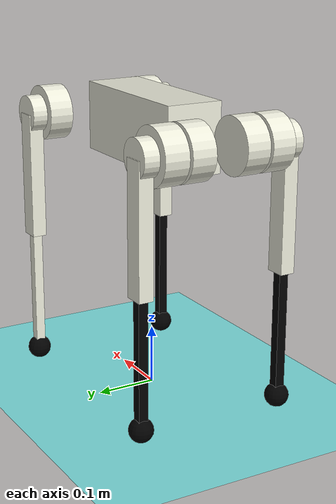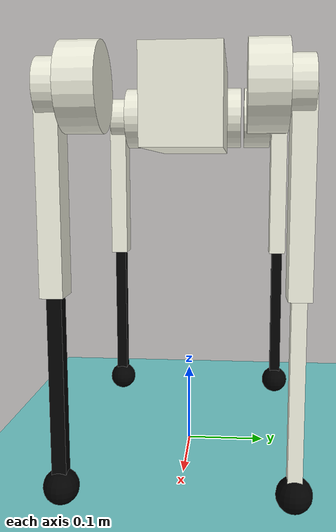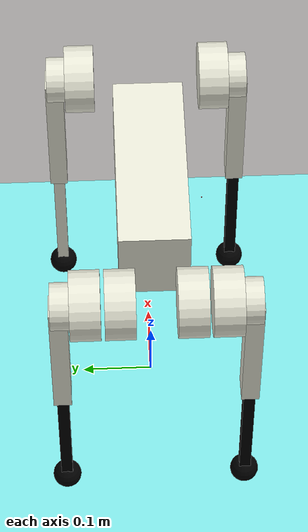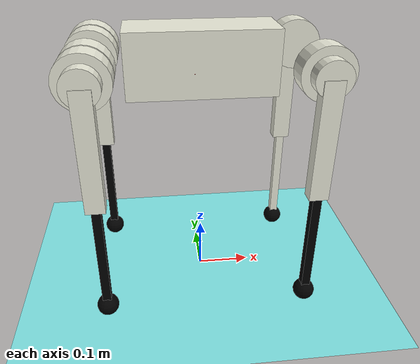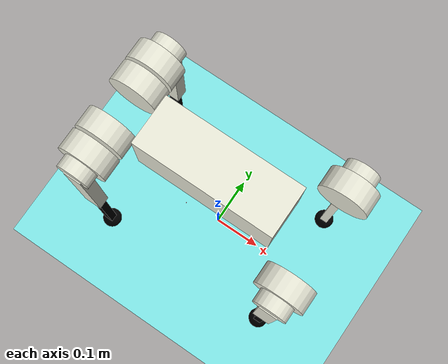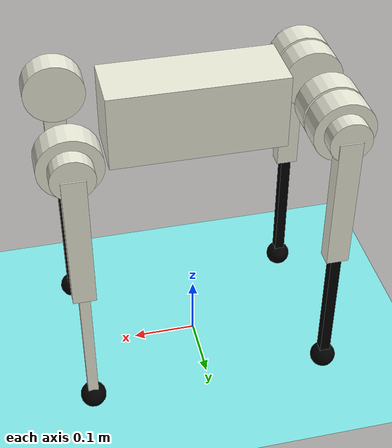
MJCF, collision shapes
<mujoco model="go1_description">
    <compiler angle="radian" assetdir=".."/>
    <size njmax="500" nconmax="100"/>
    <option gravity='0 0 -9.806' iterations='50' solver='Newton' timestep='0.005'/>
    <statistic center="0 0 0.1" extent="1"/>
    <default>
        <geom contype="1" conaffinity="1" friction="1.0 0.3 0.3" margin="0.001" group="0"/>
        <light castshadow="false" diffuse="1 1 1"/>
        <motor ctrlrange="-33.5 33.5" ctrllimited="true"/>
        <camera fovy="60"/>
        <joint damping="0.5" armature="0.01" frictionloss="0.2"/>
        <!-- Not sure if this is necessary-->
        <position kp="20" forcerange="-23.7 23.7"/>
    </default>

    <asset>
        <mesh name="trunk" file="meshes/trunk.stl"/>
        <mesh name="hip" file="meshes/hip.stl"/>
        <mesh name="thigh_mirror" file="meshes/thigh_mirror.stl"/>
        <mesh name="calf" file="meshes/calf.stl"/>
        <mesh name="thigh" file="meshes/thigh.stl"/>
        <texture name="plane" type="2d" builtin="flat" rgb1="1 1 1" rgb2="1 1 1" width="512" height="512" mark="cross"
                 markrgb="0 0 0"/>
        <material name="plane" reflectance="0.0" texture="plane" texrepeat="3 3" texuniform="true"/>
    </asset>

    <visual>
        <rgba com="0.502 1.0 0 0.0" contactforce="0.98 0.4 0.4 0.7" contactpoint="1.0 1.0 0.6 0.4"/>
        <scale com="0.2" forcewidth="0.035" contactwidth="0.10" contactheight="0.04"/>
        <global offwidth="1280" offheight="768"/>
    </visual>

    <worldbody>
        <light directional="true" diffuse=".8 .8 .8" pos="0 0 10" dir="0 0 -10"/>
        <body name="trunk" pos="0 0 0.448">
            <camera name="tracking" mode="trackcom" pos="0 -1 1" xyaxes="1 0 0 0 1 1"/>
            <camera name="tracking-ground" mode="trackcom" pos="0 -1 -0.3" xyaxes="1 0 0 0 0 1"/>
            <camera name="tracking-2" mode="trackcom" pos="0 -1 0.8" xyaxes="1 0 0 0 1 1"/>
            <camera name="realsense" pos="0.27 0.0 0.015" xyaxes="0 -1 0 0 0 1" fovy="56.18593669466556"/>
            <camera name="ego-rgb" pos="0.27 0.0 0.015" xyaxes="0 -1 0 0 0 1" fovy="70"/>
            <camera name="ego-rgb-render" pos="0.27 0.0 0.015" xyaxes="0 -1 0 0 0 1" fovy="73.51122744610701"/>
            <camera name="heightmap" mode="trackcom" pos="0 0 25" xyaxes="0 -1 0 1 0 0" fovy="6"/>
            <inertial pos="0.0116053 0.00442221 0.000106692" quat="0.0111438 0.707126 -0.00935374 0.706938" mass="4.801"
                      diaginertia="0.0447997 0.0366257 0.0162187"/>
            <joint type="free"/>
            <geom type="mesh" contype="0" conaffinity="0" group="1" rgba="0.913725 0.913725 0.847059 0.0" mesh="trunk"
                  name="base"/>
            <geom size="0.13 0.04675 0.057" type="box" rgba="0.913725 0.913725 0.847059 0.9"/>
            <geom size="0.0005 0.0005 0.0005" pos="-0.01592 -0.06659 -0.00617" type="box" contype="0" conaffinity="0"
                  group="1" rgba="0.8 0 0 0"/>
            <geom size="0.0005 0.0005 0.0005" pos="-0.01592 -0.06659 -0.00617" type="box" rgba="0.8 0 0 0"/>
            <site name="imu" pos="0 0 0"/>

            <body name="FR_hip" pos="0.1881 -0.04675 0">
                <inertial pos="-0.00406411 -0.0193463 4.50733e-06" quat="0.467526 0.531662 -0.466259 0.530431"
                          mass="0.679292" diaginertia="0.00131334 0.00122648 0.000728484"/>
                <joint name="FR_hip_joint" pos="0 0 0" axis="1 0 0" limited="true" range="-0.802851 0.802851"/>
                <geom quat="0 1 0 0" type="mesh" contype="0" conaffinity="0" group="1"
                      rgba="0.913725 0.913725 0.847059 0.9" mesh="hip"/>
                <geom size="0.046 0.02" pos="0 -0.045 0" quat="0.707107 0.707107 0 0" type="cylinder"
                      rgba="0.913725 0.913725 0.847059 0"/>
                <geom size="0.031 0.02" pos="0 -0.07 0" quat="0.707107 0.707107 0 0" type="cylinder"
                      rgba="0.913725 0.913725 0.847059 0"/>

                <body name="FR_thigh" pos="0 -0.08 0">
                    <inertial pos="-0.003468 0.018947 -0.032736" quat="0.999266 0.00067676 -0.0382978 0.000639813"
                              mass="0.898919" diaginertia="0.00542178 0.00514246 0.000998869"/>
                    <joint name="FR_thigh_joint" pos="0 0 0" axis="0 1 0" limited="true" range="-1.0472 4.18879"/>
                    <geom type="mesh" contype="0" conaffinity="0" group="1" rgba="0.913725 0.913725 0.847059 0.9"
                          mesh="thigh_mirror"/>
                    <geom size="0.1065 0.01225 0.017" pos="0 0 -0.1065" quat="0.707107 0 0.707107 0" type="box"
                          rgba="0.913725 0.913725 0.847059 0"/>
                    <body name="FR_calf" pos="0 0 -0.213">
                        <inertial pos="0.00455603 0.0009473 -0.147239" quat="0.762045 0.00970173 0.0180098 0.647201"
                                  mass="0.218015" diaginertia="0.00399678 0.00398122 3.99428e-05"/>
                        <joint name="FR_calf_joint" pos="0 0 0" axis="0 1 0" limited="true" range="-2.69653 -0.916298"/>
                        <geom type="mesh" contype="0" conaffinity="0" group="1" rgba="0 0 0 0.9" mesh="calf"/>
                        <geom size="0.1065 0.008 0.008" pos="0 0 -0.1065" quat="0.707107 0 0.707107 0" type="box"
                              rgba="0 0 0 0"/>
                        <geom size="0.01" pos="0 0 -0.213" contype="0" conaffinity="0" group="1" rgba="0 0 0 0.9"/>
                        <geom size="0.02" pos="0 0 -0.213" rgba="0 0 0 0.9" name="FR"/>
                    </body>
                </body>
            </body>
            <body name="FL_hip" pos="0.1881 0.04675 0">
                <inertial pos="-0.00406411 0.0193463 4.50733e-06" quat="0.531662 0.467526 -0.530431 0.466259"
                          mass="0.679292" diaginertia="0.00131334 0.00122648 0.000728484"/>
                <joint name="FL_hip_joint" pos="0 0 0" axis="1 0 0" limited="true" range="-0.802851 0.802851"/>
                <geom type="mesh" contype="0" conaffinity="0" group="1" rgba="0.913725 0.913725 0.847059 0.9"
                      mesh="hip"/>
                <geom size="0.046 0.02" pos="0 0.045 0" quat="0.707107 0.707107 0 0" type="cylinder"
                      rgba="0.913725 0.913725 0.847059 0"/>
                <geom size="0.031 0.02" pos="0 0.07 0" quat="0.707107 0.707107 0 0" type="cylinder"
                      rgba="0.913725 0.913725 0.847059 0"/>

                <body name="FL_thigh" pos="0 0.08 0">
                    <inertial pos="-0.003468 -0.018947 -0.032736" quat="0.999266 -0.00067676 -0.0382978 -0.000639813"
                              mass="0.898919" diaginertia="0.00542178 0.00514246 0.000998869"/>
                    <joint name="FL_thigh_joint" pos="0 0 0" axis="0 1 0" limited="true" range="-1.0472 4.18879"/>
                    <geom type="mesh" contype="0" conaffinity="0" group="1" rgba="0.913725 0.913725 0.847059 0.9"
                          mesh="thigh"/>
                    <geom size="0.1065 0.01225 0.017" pos="0 0 -0.1065" quat="0.707107 0 0.707107 0" type="box"
                          rgba="0.913725 0.913725 0.847059 0"/>
                    <body name="FL_calf" pos="0 0 -0.213">
                        <inertial pos="0.00455603 0.0009473 -0.147239" quat="0.762045 0.00970173 0.0180098 0.647201"
                                  mass="0.218015" diaginertia="0.00399678 0.00398122 3.99428e-05"/>
                        <joint name="FL_calf_joint" pos="0 0 0" axis="0 1 0" limited="true" range="-2.69653 -0.916298"/>
                        <geom type="mesh" contype="0" conaffinity="0" group="1" rgba="0 0 0 0.9" mesh="calf"/>
                        <geom size="0.1065 0.008 0.008" pos="0 0 -0.1065" quat="0.707107 0 0.707107 0" type="box"
                              rgba="0.913725 0.913725 0.847059 0"/>
                        <geom size="0.01" pos="0 0 -0.213" contype="0" conaffinity="0" group="1" rgba="0 0 0 0.9"/>
                        <geom size="0.02" pos="0 0 -0.213" rgba="0 0 0 0.9" name="FL"/>
                    </body>
                </body>
            </body>
            <body name="RR_hip" pos="-0.1881 -0.04675 0">
                <inertial pos="0.00406411 -0.0193463 4.50733e-06" quat="0.530431 0.466259 -0.531662 0.467526"
                          mass="0.679292" diaginertia="0.00131334 0.00122648 0.000728484"/>
                <joint name="RR_hip_joint" pos="0 0 0" axis="1 0 0" limited="true" range="-0.802851 0.802851"/>
                <geom quat="0 0 0 -1" type="mesh" contype="0" conaffinity="0" group="1"
                      rgba="0.913725 0.913725 0.847059 0.9" mesh="hip"/>
                <geom size="0.046 0.02" quat="0.707107 0.707107 0 0" type="cylinder"
                      rgba="0.913725 0.913725 0.847059 0.9"/>
                <geom size="0.046 0.02" pos="0 -0.045 0" quat="0.707107 0.707107 0 0" type="cylinder"
                      rgba="0.913725 0.913725 0.847059 0"/>
                <geom size="0.031 0.02" pos="0 -0.07 0" quat="0.707107 0.707107 0 0" type="cylinder"
                      rgba="0.913725 0.913725 0.847059 0"/>

                <body name="RR_thigh" pos="0 -0.08 0">
                    <inertial pos="-0.003468 0.018947 -0.032736" quat="0.999266 0.00067676 -0.0382978 0.000639813"
                              mass="0.898919" diaginertia="0.00542178 0.00514246 0.000998869"/>
                    <joint name="RR_thigh_joint" pos="0 0 0" axis="0 1 0" limited="true" range="-1.0472 4.18879"/>
                    <geom type="mesh" contype="0" conaffinity="0" group="1" rgba="0.913725 0.913725 0.847059 0.9"
                          mesh="thigh_mirror"/>
                    <geom size="0.1065 0.01225 0.017" pos="0 0 -0.1065" quat="0.707107 0 0.707107 0" type="box"
                          rgba="0.913725 0.913725 0.847059 0"/>
                    <body name="RR_calf" pos="0 0 -0.213">
                        <inertial pos="0.00455603 0.0009473 -0.147239" quat="0.762045 0.00970173 0.0180098 0.647201"
                                  mass="0.218015" diaginertia="0.00399678 0.00398122 3.99428e-05"/>
                        <joint name="RR_calf_joint" pos="0 0 0" axis="0 1 0" limited="true" range="-2.69653 -0.916298"/>
                        <geom type="mesh" contype="0" conaffinity="0" group="1" rgba="0 0 0 0.9" mesh="calf"/>
                        <geom size="0.1065 0.008 0.008" pos="0 0 -0.1065" quat="0.707107 0 0.707107 0" type="box"
                              rgba="0 0 0 0"/>
                        <geom size="0.01" pos="0 0 -0.213" contype="0" conaffinity="0" group="1" rgba="0 0 0 0.9"/>
                        <geom size="0.02" pos="0 0 -0.213" rgba="0 0 0 0.9" name="RR"/>
                    </body>
                </body>
            </body>
            <body name="RL_hip" pos="-0.1881 0.04675 0">
                <inertial pos="0.00406411 0.0193463 4.50733e-06" quat="0.466259 0.530431 -0.467526 0.531662"
                          mass="0.679292" diaginertia="0.00131334 0.00122648 0.000728484"/>
                <joint name="RL_hip_joint" pos="0 0 0" axis="1 0 0" limited="true" range="-0.802851 0.802851"/>
                <geom quat="0 0 1 0" type="mesh" contype="0" conaffinity="0" group="1"
                      rgba="0.913725 0.913725 0.847059 0.9" mesh="hip"/>
                <geom size="0.046 0.02" quat="0.707107 0.707107 0 0" type="cylinder"
                      rgba="0.913725 0.913725 0.847059 0.9"/>
                <geom size="0.046 0.02" pos="0 0.045 0" quat="0.707107 0.707107 0 0" type="cylinder"
                      rgba="0.913725 0.913725 0.847059 0"/>
                <geom size="0.031 0.02" pos="0 0.07 0" quat="0.707107 0.707107 0 0" type="cylinder"
                      rgba="0.913725 0.913725 0.847059 0"/>

                <body name="RL_thigh" pos="0 0.08 0">
                    <inertial pos="-0.003468 -0.018947 -0.032736" quat="0.999266 -0.00067676 -0.0382978 -0.000639813"
                              mass="0.898919" diaginertia="0.00542178 0.00514246 0.000998869"/>
                    <joint name="RL_thigh_joint" pos="0 0 0" axis="0 1 0" limited="true" range="-1.0472 4.18879"/>
                    <geom type="mesh" contype="0" conaffinity="0" group="1" rgba="0.913725 0.913725 0.847059 0.9"
                          mesh="thigh"/>
                    <geom size="0.1065 0.01225 0.017" pos="0 0 -0.1065" quat="0.707107 0 0.707107 0" type="box"
                          rgba="0.913725 0.913725 0.847059 0"/>
                    <body name="RL_calf" pos="0 0 -0.213">
                        <inertial pos="0.00455603 0.0009473 -0.147239" quat="0.762045 0.00970173 0.0180098 0.647201"
                                  mass="0.218015" diaginertia="0.00399678 0.00398122 3.99428e-05"/>
                        <joint name="RL_calf_joint" pos="0 0 0" axis="0 1 0" limited="true" range="-2.69653 -0.916298"/>
                        <geom type="mesh" contype="0" conaffinity="0" group="1" rgba="0 0 0 0.9" mesh="calf"/>
                        <geom size="0.1065 0.008 0.008" pos="0 0 -0.1065" quat="0.707107 0 0.707107 0" type="box"
                              rgba="0 0 0 0"/>
                        <geom size="0.01" pos="0 0 -0.213" contype="0" conaffinity="0" group="1" rgba="0 0 0 0.9"/>
                        <geom size="0.02" pos="0 0 -0.213" rgba="0 0 0 0.9" name="RL"/>

                    </body>
                </body>
            </body>
        </body>
        <geom name='floor' type='plane' conaffinity='1' condim='3' contype='1' rgba="0.5 0.9 0.9 0.1" material='plane'
              pos='0 0 0' size='0 0 1'/>
    </worldbody>
    <actuator>
        <position name="FR_hip" joint="FR_hip_joint"/>
        <position name="FR_thigh" joint="FR_thigh_joint"/>
        <position name="FR_calf" joint="FR_calf_joint"/>
        <position name="FL_hip" joint="FL_hip_joint"/>
        <position name="FL_thigh" joint="FL_thigh_joint"/>
        <position name="FL_calf" joint="FL_calf_joint"/>
        <position name="RR_hip" joint="RR_hip_joint"/>
        <position name="RR_thigh" joint="RR_thigh_joint"/>
        <position name="RR_calf" joint="RR_calf_joint"/>
        <position name="RL_hip" joint="RL_hip_joint"/>
        <position name="RL_thigh" joint="RL_thigh_joint"/>
        <position name="RL_calf" joint="RL_calf_joint"/>
    </actuator>

    <sensor>

        <jointpos name="FR_hip_pos" joint="FR_hip_joint"/>
        <jointpos name="FR_thigh_pos" joint="FR_thigh_joint"/>
        <jointpos name="FR_calf_pos" joint="FR_calf_joint"/>
        <jointpos name="FL_hip_pos" joint="FL_hip_joint"/>
        <jointpos name="FL_thigh_pos" joint="FL_thigh_joint"/>
        <jointpos name="FL_calf_pos" joint="FL_calf_joint"/>
        <jointpos name="RR_hip_pos" joint="RR_hip_joint"/>
        <jointpos name="RR_thigh_pos" joint="RR_thigh_joint"/>
        <jointpos name="RR_calf_pos" joint="RR_calf_joint"/>
        <jointpos name="RL_hip_pos" joint="RL_hip_joint"/>
        <jointpos name="RL_thigh_pos" joint="RL_thigh_joint"/>
        <jointpos name="RL_calf_pos" joint="RL_calf_joint"/>

        <jointvel name="FR_hip_vel" joint="FR_hip_joint"/>
        <jointvel name="FR_thigh_vel" joint="FR_thigh_joint"/>
        <jointvel name="FR_calf_vel" joint="FR_calf_joint"/>
        <jointvel name="FL_hip_vel" joint="FL_hip_joint"/>
        <jointvel name="FL_thigh_vel" joint="FL_thigh_joint"/>
        <jointvel name="FL_calf_vel" joint="FL_calf_joint"/>
        <jointvel name="RR_hip_vel" joint="RR_hip_joint"/>
        <jointvel name="RR_thigh_vel" joint="RR_thigh_joint"/>
        <jointvel name="RR_calf_vel" joint="RR_calf_joint"/>
        <jointvel name="RL_hip_vel" joint="RL_hip_joint"/>
        <jointvel name="RL_thigh_vel" joint="RL_thigh_joint"/>
        <jointvel name="RL_calf_vel" joint="RL_calf_joint"/>

        <accelerometer name="Body_Acc" site="imu"/>

        <gyro name="Body_Gyro" site="imu"/>

    </sensor>
</mujoco>
